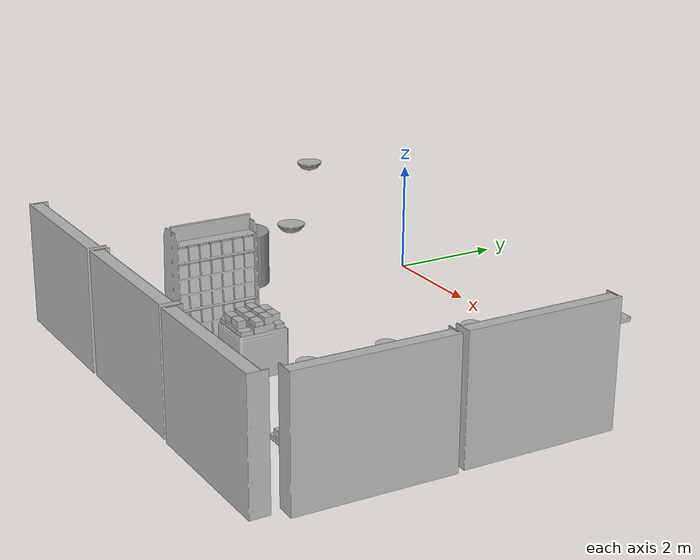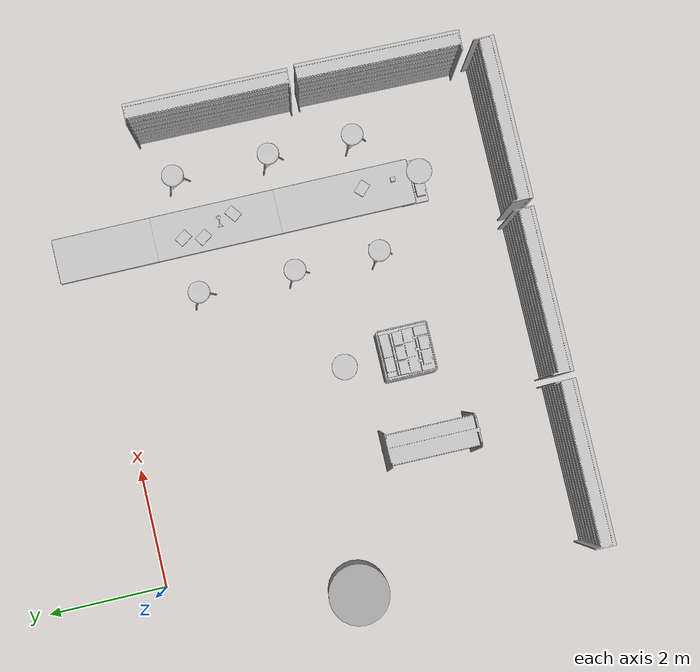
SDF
<sdf version="1.6">
 <world name="default">
  <model name="Bicycle_01_001">
   <link name="aws_robomaker_retail_Bicycle_01::link">
    <inertial>
     <mass>0.04</mass>
     <inertia><ixx>0.1</ixx><ixy>0</ixy><ixz>0</ixz><iyy>0.1</iyy><iyz>0</iyz><izz>0.01</izz></inertia>
    </inertial>
    <collision name="collision">
     <geometry>
      <mesh>
       <uri>file://models/aws_robomaker_retail_Bicycle_01/meshes/aws_Bicycle_01_collision.DAE</uri>
       <scale>1 1 1</scale>
      </mesh>
     </geometry>
    </collision>
    <visual name="visual">
     <geometry>
      <mesh><uri>file://models/aws_robomaker_retail_Bicycle_01/meshes/aws_Bicycle_01_visual.DAE</uri></mesh>
     </geometry>
     <meta><layer>1</layer></meta>
    </visual>
   </link>
   <static>1</static>
   <pose>5.68125 -2.24245 0.931246 2e-06 -2.4e-05 -0</pose>
  </model>
  <model name="BookE_01_001">
   <link name="aws_robomaker_retail_BookE_01::link">
    <inertial>
     <mass>1</mass>
     <inertia><ixy>0</ixy><ixz>0</ixz><iyz>0</iyz><ixx>0.0666</ixx><iyy>0.0346</iyy><izz>0.0986</izz></inertia>
    </inertial>
    <collision name="collision">
     <geometry>
      <mesh>
       <uri>file://models/aws_robomaker_retail_BookE_01/meshes/aws_BookE_01_collision.DAE</uri>
       <scale>1 1 1</scale>
      </mesh>
     </geometry>
    </collision>
    <visual name="visual">
     <geometry>
      <mesh><uri>file://models/aws_robomaker_retail_BookE_01/meshes/aws_BookE_01_visual.DAE</uri></mesh>
     </geometry>
     <meta><layer>1</layer></meta>
    </visual>
   </link>
   <static>1</static>
   <pose>5.47653 -1.93253 0.948933 4e-06 1e-06 -2.54352</pose>
  </model>
  <model name="BookE_01_004">
   <link name="aws_robomaker_retail_BookE_01::link">
    <inertial>
     <mass>1</mass>
     <inertia><ixy>0</ixy><ixz>0</ixz><iyz>0</iyz><ixx>0.0666</ixx><iyy>0.0346</iyy><izz>0.0986</izz></inertia>
    </inertial>
    <collision name="collision">
     <geometry>
      <mesh>
       <uri>file://models/aws_robomaker_retail_BookE_01/meshes/aws_BookE_01_collision.DAE</uri>
       <scale>1 1 1</scale>
      </mesh>
     </geometry>
    </collision>
    <visual name="visual">
     <geometry>
      <mesh><uri>file://models/aws_robomaker_retail_BookE_01/meshes/aws_BookE_01_visual.DAE</uri></mesh>
     </geometry>
     <meta><layer>1</layer></meta>
    </visual>
   </link>
   <static>1</static>
   <pose>5.67723 -4.6492 0.946394 0.0001 6e-06 -2.35575</pose>
  </model>
  <model name="BookE_01_005">
   <link name="aws_robomaker_retail_BookE_01::link">
    <inertial>
     <mass>1</mass>
     <inertia><ixy>0</ixy><ixz>0</ixz><iyz>0</iyz><ixx>0.0666</ixx><iyy>0.0346</iyy><izz>0.0986</izz></inertia>
    </inertial>
    <collision name="collision">
     <geometry>
      <mesh>
       <uri>file://models/aws_robomaker_retail_BookE_01/meshes/aws_BookE_01_collision.DAE</uri>
       <scale>1 1 1</scale>
      </mesh>
     </geometry>
    </collision>
    <visual name="visual">
     <geometry>
      <mesh><uri>file://models/aws_robomaker_retail_BookE_01/meshes/aws_BookE_01_visual.DAE</uri></mesh>
     </geometry>
     <meta><layer>1</layer></meta>
    </visual>
   </link>
   <static>1</static>
   <pose>5.53815 -1.61032 0.948933 0 0 -2.5269</pose>
  </model>
  <model name="BookE_01_011">
   <link name="aws_robomaker_retail_BookE_01::link">
    <inertial>
     <mass>1</mass>
     <inertia><ixy>0</ixy><ixz>0</ixz><iyz>0</iyz><ixx>0.0666</ixx><iyy>0.0346</iyy><izz>0.0986</izz></inertia>
    </inertial>
    <collision name="collision">
     <geometry>
      <mesh>
       <uri>file://models/aws_robomaker_retail_BookE_01/meshes/aws_BookE_01_collision.DAE</uri>
       <scale>1 1 1</scale>
      </mesh>
     </geometry>
    </collision>
    <visual name="visual">
     <geometry>
      <mesh><uri>file://models/aws_robomaker_retail_BookE_01/meshes/aws_BookE_01_visual.DAE</uri></mesh>
     </geometry>
     <meta><layer>1</layer></meta>
    </visual>
   </link>
   <static>1</static>
   <pose>5.74923 -2.49202 0.948933 2e-06 1e-06 2.22339</pose>
  </model>
  <model name="BookD_01_001">
   <link name="aws_robomaker_retail_BookD_01::link">
    <inertial><mass>0.5</mass></inertial>
    <collision name="collision">
     <geometry>
      <mesh>
       <uri>file://models/aws_robomaker_retail_BookD_01/meshes/aws_BookD_01_collision.DAE</uri>
       <scale>1 1 1</scale>
      </mesh>
     </geometry>
    </collision>
    <visual name="visual">
     <geometry>
      <mesh><uri>file://models/aws_robomaker_retail_BookD_01/meshes/aws_BookD_01_visual.DAE</uri></mesh>
     </geometry>
     <meta><layer>1</layer></meta>
    </visual>
   </link>
   <static>1</static>
   <pose>5.72005 -5.36588 0.022179 0.003452 -1e-06 0.000652</pose>
  </model>
  <model name="BookF_01_002">
   <link name="aws_robomaker_retail_BookF_01::link">
    <inertial>
     <mass>10</mass>
     <inertia>
      <ixx>0.583817</ixx>
      <ixy>0</ixy>
      <ixz>0</ixz>
      <iyy>0.502925</iyy>
      <iyz>0</iyz>
      <izz>0.99304</izz>
     </inertia>
    </inertial>
    <collision name="collision">
     <geometry>
      <mesh>
       <uri>file://models/aws_robomaker_retail_BookF_01/meshes/aws_BookF_01_collision.DAE</uri>
       <scale>1 1 1</scale>
      </mesh>
     </geometry>
    </collision>
    <visual name="visual">
     <geometry>
      <mesh><uri>file://models/aws_robomaker_retail_BookF_01/meshes/aws_BookF_01_visual.DAE</uri></mesh>
     </geometry>
     <meta><layer>1</layer></meta>
    </visual>
   </link>
   <static>1</static>
   <pose>2.90298 -4.76075 0.75826 0.00345 6e-06 -0.00225</pose>
  </model>
  <model name="BookshelfA_01_002">
   <link name="aws_robomaker_retail_BookshelfA_01::link">
    <inertial>
     <mass>50</mass>
     <inertia><ixx>27.7341</ixx><ixy>0</ixy><ixz>0</ixz><iyy>20.9361</iyy><iyz>0</iyz><izz>11.3596</izz></inertia>
    </inertial>
    <collision name="collision">
     <geometry>
      <mesh>
       <uri>file://models/aws_robomaker_retail_BookshelfA_01/meshes/aws_BookshelfA_01_collision.DAE</uri>
       <scale>1 1 1</scale>
      </mesh>
     </geometry>
    </collision>
    <visual name="visual">
     <geometry>
      <mesh><uri>file://models/aws_robomaker_retail_BookshelfA_01/meshes/aws_BookshelfA_01_visual.DAE</uri></mesh>
     </geometry>
     <meta><layer>1</layer></meta>
    </visual>
   </link>
   <static>1</static>
   <pose>1.40515 -4.76165 0.003411 0 -0 0</pose>
  </model>
  <model name="BookshelfB_01_003">
   <link name="aws_robomaker_retail_BookshelfB_01::link">
    <inertial>
     <mass>50</mass>
     <inertia><ixx>19.8742</ixx><ixy>0</ixy><ixz>0</ixz><iyy>49.1263</iyy><iyz>0</iyz><izz>30.2231</izz></inertia>
    </inertial>
    <collision name="collision">
     <geometry>
      <mesh>
       <uri>file://models/aws_robomaker_retail_BookshelfB_01/meshes/aws_BookshelfB_01_collision.DAE</uri>
       <scale>1 1 1</scale>
      </mesh>
     </geometry>
    </collision>
    <visual name="visual">
     <geometry>
      <mesh><uri>file://models/aws_robomaker_retail_BookshelfB_01/meshes/aws_BookshelfB_01_visual.DAE</uri></mesh>
     </geometry>
     <meta><layer>1</layer></meta>
    </visual>
   </link>
   <static>1</static>
   <pose>0.522246 -6.9715 0.017947 -0.003292 0 0</pose>
  </model>
  <model name="BookshelfB_01_004">
   <link name="aws_robomaker_retail_BookshelfB_01::link">
    <inertial>
     <mass>50</mass>
     <inertia><ixx>19.8742</ixx><ixy>0</ixy><ixz>0</ixz><iyy>49.1263</iyy><iyz>0</iyz><izz>30.2231</izz></inertia>
    </inertial>
    <collision name="collision">
     <geometry>
      <mesh>
       <uri>file://models/aws_robomaker_retail_BookshelfB_01/meshes/aws_BookshelfB_01_collision.DAE</uri>
       <scale>1 1 1</scale>
      </mesh>
     </geometry>
    </collision>
    <visual name="visual">
     <geometry>
      <mesh><uri>file://models/aws_robomaker_retail_BookshelfB_01/meshes/aws_BookshelfB_01_visual.DAE</uri></mesh>
     </geometry>
     <meta><layer>1</layer></meta>
    </visual>
   </link>
   <static>1</static>
   <pose>3.29339 -6.96366 0.017383 8e-06 -2e-06 -0</pose>
  </model>
  <model name="BookshelfB_01_005">
   <link name="aws_robomaker_retail_BookshelfB_01::link">
    <inertial>
     <mass>50</mass>
     <inertia><ixx>19.8742</ixx><ixy>0</ixy><ixz>0</ixz><iyy>49.1263</iyy><iyz>0</iyz><izz>30.2231</izz></inertia>
    </inertial>
    <collision name="collision">
     <geometry>
      <mesh>
       <uri>file://models/aws_robomaker_retail_BookshelfB_01/meshes/aws_BookshelfB_01_collision.DAE</uri>
       <scale>1 1 1</scale>
      </mesh>
     </geometry>
    </collision>
    <visual name="visual">
     <geometry>
      <mesh><uri>file://models/aws_robomaker_retail_BookshelfB_01/meshes/aws_BookshelfB_01_visual.DAE</uri></mesh>
     </geometry>
     <meta><layer>1</layer></meta>
    </visual>
   </link>
   <static>1</static>
   <pose>6.08038 -6.98766 0.017409 0.000174 4e-06 0</pose>
  </model>
  <model name="BookshelfB_01_006">
   <link name="aws_robomaker_retail_BookshelfB_01::link">
    <inertial>
     <mass>50</mass>
     <inertia><ixx>19.8742</ixx><ixy>0</ixy><ixz>0</ixz><iyy>49.1263</iyy><iyz>0</iyz><izz>30.2231</izz></inertia>
    </inertial>
    <collision name="collision">
     <geometry>
      <mesh>
       <uri>file://models/aws_robomaker_retail_BookshelfB_01/meshes/aws_BookshelfB_01_collision.DAE</uri>
       <scale>1 1 1</scale>
      </mesh>
     </geometry>
    </collision>
    <visual name="visual">
     <geometry>
      <mesh><uri>file://models/aws_robomaker_retail_BookshelfB_01/meshes/aws_BookshelfB_01_visual.DAE</uri></mesh>
     </geometry>
     <meta><layer>1</layer></meta>
    </visual>
   </link>
   <static>1</static>
   <pose>7.47833 -5.2983 0.017443 -0.001974 -0.000211 1.55406</pose>
  </model>
  <model name="BookshelfB_01_007">
   <link name="aws_robomaker_retail_BookshelfB_01::link">
    <inertial>
     <mass>50</mass>
     <inertia><ixx>19.8742</ixx><ixy>0</ixy><ixz>0</ixz><iyy>49.1263</iyy><iyz>0</iyz><izz>30.2231</izz></inertia>
    </inertial>
    <collision name="collision">
     <geometry>
      <mesh>
       <uri>file://models/aws_robomaker_retail_BookshelfB_01/meshes/aws_BookshelfB_01_collision.DAE</uri>
       <scale>1 1 1</scale>
      </mesh>
     </geometry>
    </collision>
    <visual name="visual">
     <geometry>
      <mesh><uri>file://models/aws_robomaker_retail_BookshelfB_01/meshes/aws_BookshelfB_01_visual.DAE</uri></mesh>
     </geometry>
     <meta><layer>1</layer></meta>
    </visual>
   </link>
   <static>1</static>
   <pose>7.47833 -2.51065 0.017402 1e-05 -1.3e-05 1.56207</pose>
  </model>
  <model name="BookshelfC_01_002">
   <link name="aws_robomaker_retail_BookshelfC_01::link">
    <inertial>
     <mass>50</mass>
     <inertia><ixx>5.5865</ixx><ixy>0</ixy><ixz>0</ixz><iyy>5.47324</iyy><iyz>0</iyz><izz>6.23277</izz></inertia>
    </inertial>
    <collision name="collision">
     <geometry>
      <mesh>
       <uri>file://models/aws_robomaker_retail_BookshelfC_01/meshes/aws_BookshelfC_01_collision.DAE</uri>
       <scale>1 1 1</scale>
      </mesh>
     </geometry>
    </collision>
    <visual name="visual">
     <geometry>
      <mesh><uri>file://models/aws_robomaker_retail_BookshelfC_01/meshes/aws_BookshelfC_01_visual.DAE</uri></mesh>
     </geometry>
     <meta><layer>1</layer></meta>
    </visual>
   </link>
   <static>1</static>
   <pose>2.91545 -4.76171 -0.003455 0.003452 -0 1.4e-05</pose>
  </model>
  <model name="ChairB_01_002">
   <link name="aws_robomaker_retail_ChairB_01::link">
    <inertial>
     <mass>3</mass>
     <inertia>
      <ixx>0.188185</ixx>
      <ixy>0</ixy>
      <ixz>0</ixz>
      <iyy>0.190617</iyy>
      <iyz>0</iyz>
      <izz>0.100999</izz>
     </inertia>
    </inertial>
    <collision name="collision">
     <geometry>
      <mesh>
       <uri>file://models/aws_robomaker_retail_ChairB_01/meshes/aws_ChairB_01_collision.DAE</uri>
       <scale>1 1 1</scale>
      </mesh>
     </geometry>
    </collision>
    <visual name="visual">
     <geometry>
      <mesh><uri>file://models/aws_robomaker_retail_ChairB_01/meshes/aws_ChairB_01_visual.DAE</uri></mesh>
     </geometry>
     <meta><layer>1</layer></meta>
    </visual>
   </link>
   <static>1</static>
   <pose>6.64396 -1.62199 0.022051 0 0.006174 8.8e-05</pose>
  </model>
  <model name="ChairB_01_003">
   <link name="aws_robomaker_retail_ChairB_01::link">
    <inertial>
     <mass>3</mass>
     <inertia>
      <ixx>0.188185</ixx>
      <ixy>0</ixy>
      <ixz>0</ixz>
      <iyy>0.190617</iyy>
      <iyz>0</iyz>
      <izz>0.100999</izz>
     </inertia>
    </inertial>
    <collision name="collision">
     <geometry>
      <mesh>
       <uri>file://models/aws_robomaker_retail_ChairB_01/meshes/aws_ChairB_01_collision.DAE</uri>
       <scale>1 1 1</scale>
      </mesh>
     </geometry>
    </collision>
    <visual name="visual">
     <geometry>
      <mesh><uri>file://models/aws_robomaker_retail_ChairB_01/meshes/aws_ChairB_01_visual.DAE</uri></mesh>
     </geometry>
     <meta><layer>1</layer></meta>
    </visual>
   </link>
   <static>1</static>
   <pose>6.64396 -3.24663 0.022051 0 0.006174 8.8e-05</pose>
  </model>
  <model name="ChairB_01_004">
   <link name="aws_robomaker_retail_ChairB_01::link">
    <inertial>
     <mass>3</mass>
     <inertia>
      <ixx>0.188185</ixx>
      <ixy>0</ixy>
      <ixz>0</ixz>
      <iyy>0.190617</iyy>
      <iyz>0</iyz>
      <izz>0.100999</izz>
     </inertia>
    </inertial>
    <collision name="collision">
     <geometry>
      <mesh>
       <uri>file://models/aws_robomaker_retail_ChairB_01/meshes/aws_ChairB_01_collision.DAE</uri>
       <scale>1 1 1</scale>
      </mesh>
     </geometry>
    </collision>
    <visual name="visual">
     <geometry>
      <mesh><uri>file://models/aws_robomaker_retail_ChairB_01/meshes/aws_ChairB_01_visual.DAE</uri></mesh>
     </geometry>
     <meta><layer>1</layer></meta>
    </visual>
   </link>
   <static>1</static>
   <pose>6.64396 -4.6816 0.022051 0 0.006174 8.8e-05</pose>
  </model>
  <model name="ChairB_01_006">
   <link name="aws_robomaker_retail_ChairB_01::link">
    <inertial>
     <mass>3</mass>
     <inertia>
      <ixx>0.188185</ixx>
      <ixy>0</ixy>
      <ixz>0</ixz>
      <iyy>0.190617</iyy>
      <iyz>0</iyz>
      <izz>0.100999</izz>
     </inertia>
    </inertial>
    <collision name="collision">
     <geometry>
      <mesh>
       <uri>file://models/aws_robomaker_retail_ChairB_01/meshes/aws_ChairB_01_collision.DAE</uri>
       <scale>1 1 1</scale>
      </mesh>
     </geometry>
    </collision>
    <visual name="visual">
     <geometry>
      <mesh><uri>file://models/aws_robomaker_retail_ChairB_01/meshes/aws_ChairB_01_visual.DAE</uri></mesh>
     </geometry>
     <meta><layer>1</layer></meta>
    </visual>
   </link>
   <static>1</static>
   <pose>4.6533 -1.62199 0.022051 0 0.006174 8.8e-05</pose>
  </model>
  <model name="ChairB_01_007">
   <link name="aws_robomaker_retail_ChairB_01::link">
    <inertial>
     <mass>3</mass>
     <inertia>
      <ixx>0.188185</ixx>
      <ixy>0</ixy>
      <ixz>0</ixz>
      <iyy>0.190617</iyy>
      <iyz>0</iyz>
      <izz>0.100999</izz>
     </inertia>
    </inertial>
    <collision name="collision">
     <geometry>
      <mesh>
       <uri>file://models/aws_robomaker_retail_ChairB_01/meshes/aws_ChairB_01_collision.DAE</uri>
       <scale>1 1 1</scale>
      </mesh>
     </geometry>
    </collision>
    <visual name="visual">
     <geometry>
      <mesh><uri>file://models/aws_robomaker_retail_ChairB_01/meshes/aws_ChairB_01_visual.DAE</uri></mesh>
     </geometry>
     <meta><layer>1</layer></meta>
    </visual>
   </link>
   <static>1</static>
   <pose>4.6533 -3.24663 0.022051 0 0.006174 8.8e-05</pose>
  </model>
  <model name="ChairB_01_008">
   <link name="aws_robomaker_retail_ChairB_01::link">
    <inertial>
     <mass>3</mass>
     <inertia>
      <ixx>0.188185</ixx>
      <ixy>0</ixy>
      <ixz>0</ixz>
      <iyy>0.190617</iyy>
      <iyz>0</iyz>
      <izz>0.100999</izz>
     </inertia>
    </inertial>
    <collision name="collision">
     <geometry>
      <mesh>
       <uri>file://models/aws_robomaker_retail_ChairB_01/meshes/aws_ChairB_01_collision.DAE</uri>
       <scale>1 1 1</scale>
      </mesh>
     </geometry>
    </collision>
    <visual name="visual">
     <geometry>
      <mesh><uri>file://models/aws_robomaker_retail_ChairB_01/meshes/aws_ChairB_01_visual.DAE</uri></mesh>
     </geometry>
     <meta><layer>1</layer></meta>
    </visual>
   </link>
   <static>1</static>
   <pose>4.6533 -4.6816 0.022051 0 0.006174 8.8e-05</pose>
  </model>
  <model name="DeskB_01_001">
   <link name="aws_robomaker_retail_DeskB_01::link">
    <inertial>
     <mass>50</mass>
     <inertia><ixx>154.884</ixx><ixy>0</ixy><ixz>0</ixz><iyy>7.48424</iyy><iyz>0</iyz><izz>152.099</izz></inertia>
    </inertial>
    <collision name="collision">
     <geometry>
      <mesh>
       <uri>file://models/aws_robomaker_retail_DeskB_01/meshes/aws_DeskB_01_collision.DAE</uri>
       <scale>1 1 1</scale>
      </mesh>
     </geometry>
    </collision>
    <visual name="visual">
     <geometry>
      <mesh><uri>file://models/aws_robomaker_retail_DeskB_01/meshes/aws_DeskB_01_visual.DAE</uri></mesh>
     </geometry>
     <meta><layer>1</layer></meta>
    </visual>
   </link>
   <static>1</static>
   <pose>5.62294 -2.47542 -0.181282 0 -0 0</pose>
  </model>
  <model name="LightA_01_001">
   <link name="aws_robomaker_retail_LightA_01::link">
    <inertial><mass>1</mass></inertial>
    <collision name="collision">
     <geometry>
      <mesh>
       <uri>file://models/aws_robomaker_retail_LightA_01/meshes/aws_LightA_01_collision.DAE</uri>
       <scale>1 1 1</scale>
      </mesh>
     </geometry>
    </collision>
    <visual name="visual">
     <geometry>
      <mesh><uri>file://models/aws_robomaker_retail_LightA_01/meshes/aws_LightA_01_visual.DAE</uri></mesh>
     </geometry>
     <meta><layer>3</layer></meta>
    </visual>
   </link>
   <static>1</static>
   <pose>2.77442 -3.62815 3.15033 0 -0 0</pose>
  </model>
  <model name="LightA_01_002">
   <link name="aws_robomaker_retail_LightA_01::link">
    <inertial><mass>1</mass></inertial>
    <collision name="collision">
     <geometry>
      <mesh>
       <uri>file://models/aws_robomaker_retail_LightA_01/meshes/aws_LightA_01_collision.DAE</uri>
       <scale>1 1 1</scale>
      </mesh>
     </geometry>
    </collision>
    <visual name="visual">
     <geometry>
      <mesh><uri>file://models/aws_robomaker_retail_LightA_01/meshes/aws_LightA_01_visual.DAE</uri></mesh>
     </geometry>
     <meta><layer>3</layer></meta>
    </visual>
   </link>
   <static>1</static>
   <pose>5.38399 -5.38371 3.15033 0 -0 0</pose>
  </model>
  <model name="MagicCube_01_001">
   <link name="aws_robomaker_retail_MagicCube_01::link">
    <inertial>
     <mass>0.2</mass>
     <inertia><ixx>0.01</ixx><ixy>0</ixy><ixz>0</ixz><iyy>0.01</iyy><iyz>0</iyz><izz>0.01</izz></inertia>
    </inertial>
    <collision name="collision">
     <geometry>
      <mesh>
       <uri>file://models/aws_robomaker_retail_MagicCube_01/meshes/aws_MagicCube_01_collision.DAE</uri>
       <scale>1 1 1</scale>
      </mesh>
     </geometry>
    </collision>
    <visual name="visual">
     <geometry>
      <mesh><uri>file://models/aws_robomaker_retail_MagicCube_01/meshes/aws_MagicCube_01_visual.DAE</uri></mesh>
     </geometry>
     <meta><layer>1</layer></meta>
    </visual>
   </link>
   <pose>5.70452 -5.17433 0.928725 -1e-06 -2e-06 -1.55541</pose>
  </model>
  <model name="unit_cylinder">
   <pose>-0.757517 -3.09652 0.513386 7e-06 2e-06 1.5e-05</pose>
   <link name="link">
    <inertial>
     <mass>1</mass>
     <inertia><ixx>0.145833</ixx><ixy>0</ixy><ixz>0</ixz><iyy>0.145833</iyy><iyz>0</iyz><izz>0.125</izz></inertia>
    </inertial>
    <collision name="collision">
     <geometry><cylinder><radius>0.5</radius><length>1</length></cylinder></geometry>
    </collision>
    <visual name="visual">
     <geometry><cylinder><radius>0.5</radius><length>1</length></cylinder></geometry>
     <material>
      <script><name>Gazebo/Grey</name><uri>file://media/materials/scripts/gazebo.material</uri></script>
     </material>
    </visual>
   </link>
  </model>
 </world>
</sdf>
